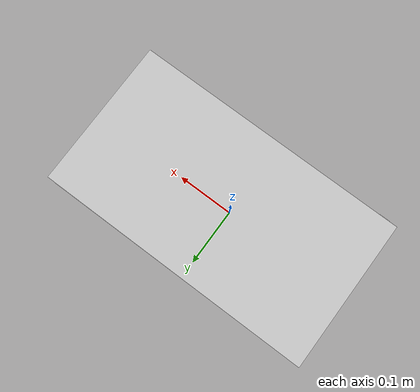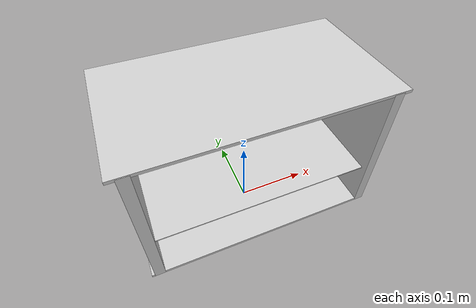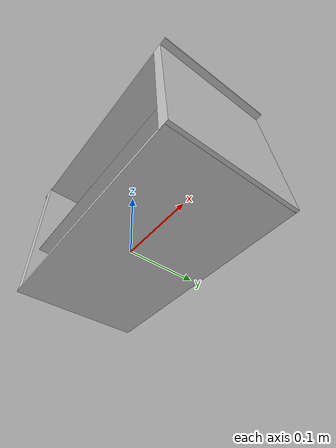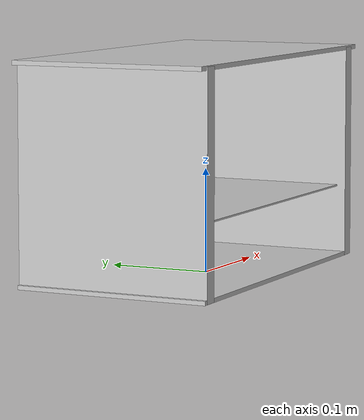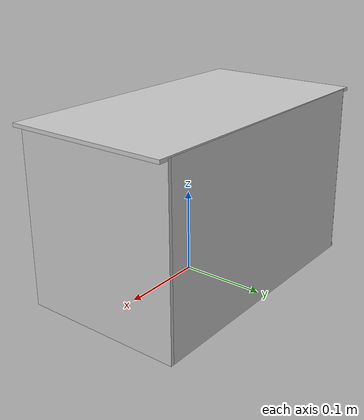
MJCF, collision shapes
<mujoco model="wooden_two_layer_shelf">
  <asset>
  <texture file="dark_fine_wood.png" name="tex-wooden_two_layer_shelf" type="2d" />
  <material name="wooden_two_layer_shelf" reflectance="0.5" texrepeat="1 1" texture="tex-wooden_two_layer_shelf" texuniform="false" />
  <mesh file="visual/wooden_two_layer_shelf_vis.msh" name="wooden_two_layer_shelf_vis" scale="0.05 0.05 0.05" /></asset>
  <worldbody>
    <body>
      <body name="object">
      <inertial pos="0 0.016 0.105" mass="0.80" diaginertia="0.0120 0.0090 0.0060"/>
      <site type="box" pos="0.00496 0.01567 0.20688" quat="1 0 0 0" size="0.17557 0.09438 0.00147 " name="top_side" rgba="0.8 0.8 0.8 0.0" /><site type="box" pos="0.00538 0.01687 0.13672" quat="0.70711 -0.00000 -0.70711 -0.00000" size="0.06739 0.08564 0.15093" name="top_region" rgba="0.8 0.8 0.8 0.0" /><site type="box" pos="0.00555 0.01687 0.01407" quat="0.70711 0.00000 0.70711 0.00000" size="0.03528 0.08564 0.15580" name="bottom_region" rgba="0.8 0.8 0.8 0.0" />
      <geom name="patched_flat_foot" type="box" pos="0 0.016 0.002" size="0.165 0.095 0.002" density="0" group="0" friction="0.95 0.3 0.1" solimp="0.998 0.998 0.001" solref="0.001 1" rgba="0.8 0.8 0.8 0.0"/>
      <geom solimp="0.998 0.998 0.001" solref="0.001 1" density="100" friction="0.95 0.3 0.1" type="mesh" mesh="wooden_two_layer_shelf_vis" conaffinity="0" contype="0" group="1" material="wooden_two_layer_shelf" /><geom solimp="0.998 0.998 0.001" solref="0.001 1" density="100" friction="0.95 0.3 0.1" type="box" pos="-0.15376 0.01625 0.10463" quat="0.00000 1.00000 0.00000 0.00000" size="0.00709 0.09542 0.10443" group="0" rgba="0.8 0.8 0.8 0.3" /><geom solimp="0.998 0.998 0.001" solref="0.001 1" density="100" friction="0.95 0.3 0.1" type="box" pos="0.16310 0.01625 0.10463" quat="0.00000 1.00000 0.00000 0.00000" size="0.00709 0.09542 0.10443" group="0" rgba="0.8 0.8 0.8 0.3" /><geom solimp="0.998 0.998 0.001" solref="0.001 1" density="100" friction="0.95 0.3 0.1" type="box" pos="0.00290 0.10938 0.10463" quat="0.49998 0.49998 -0.50002 -0.50002" size="0.00231 0.10443 0.16330" group="0" rgba="0.8 0.8 0.8 0.3" /><geom solimp="0.998 0.998 0.001" solref="0.001 1" density="100" friction="0.95 0.3 0.1" type="box" pos="0.00550 0.10954 0.10388" quat="0.49984 -0.50083 -0.50016 0.49917" size="0.00193 0.10314 0.15232" group="0" rgba="0.8 0.8 0.8 0.3" /><geom solimp="0.998 0.998 0.001" solref="0.001 1" density="100" friction="0.95 0.3 0.1" type="box" pos="0.00523 0.01868 0.07005" quat="0.00047 -0.70781 0.00048 0.70641" size="0.00084 0.08935 0.15321" group="0" rgba="0.8 0.8 0.8 0.3" /><geom solimp="0.998 0.998 0.001" solref="0.001 1" density="100" friction="0.95 0.3 0.1" type="box" pos="0.00498 0.01635 0.20815" quat="0.00047 -0.70781 0.00048 0.70641" size="0.00212 0.09508 0.17563" group="0" rgba="0.8 0.8 0.8 0.3" /></body>
      <site rgba="0 0 0 0" size="0.005" pos="0 0 -0.06" name="bottom_site" />
      <site rgba="0 0 0 0" size="0.005" pos="0 0 0.04" name="top_site" />
      <site rgba="0 0 0 0" size="0.005" pos="0.025 0.025 0" name="horizontal_radius_site" />
    </body>
  </worldbody>
</mujoco>
